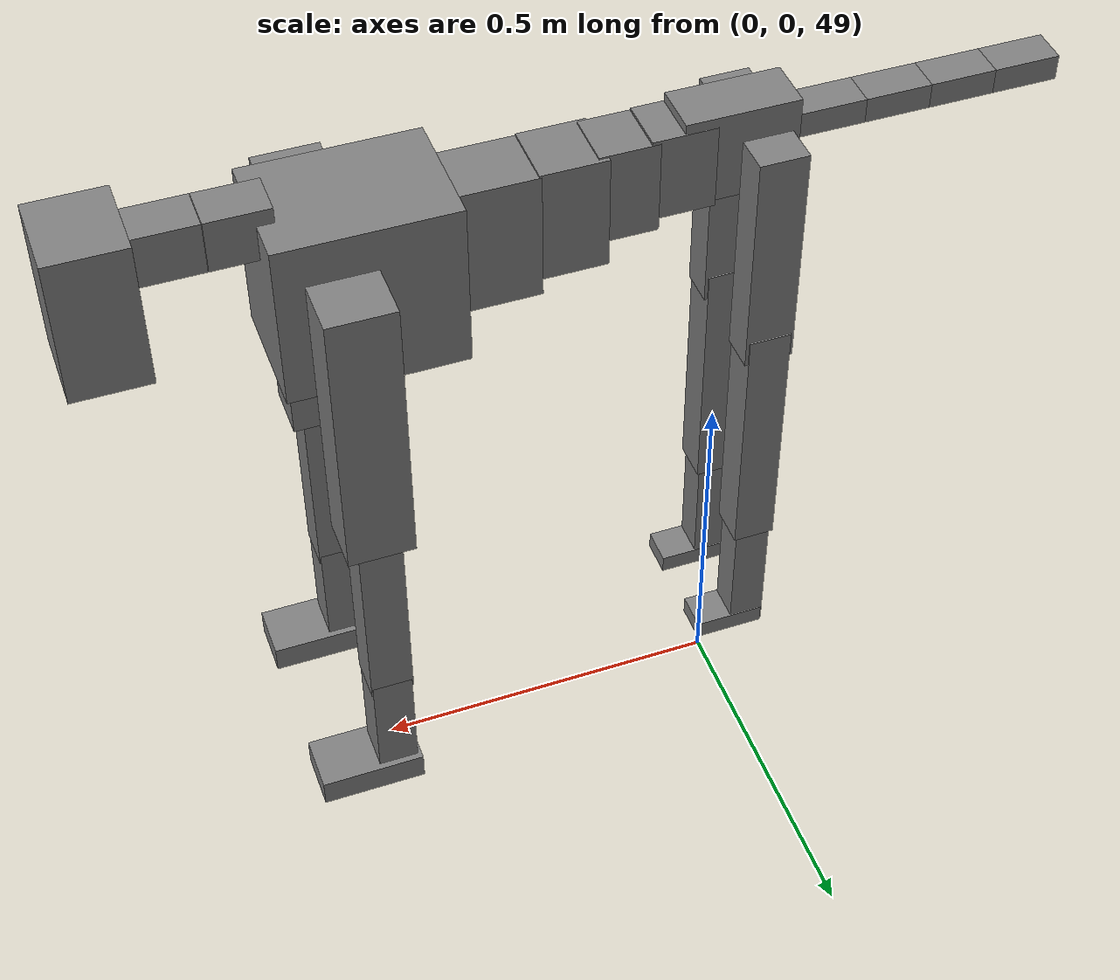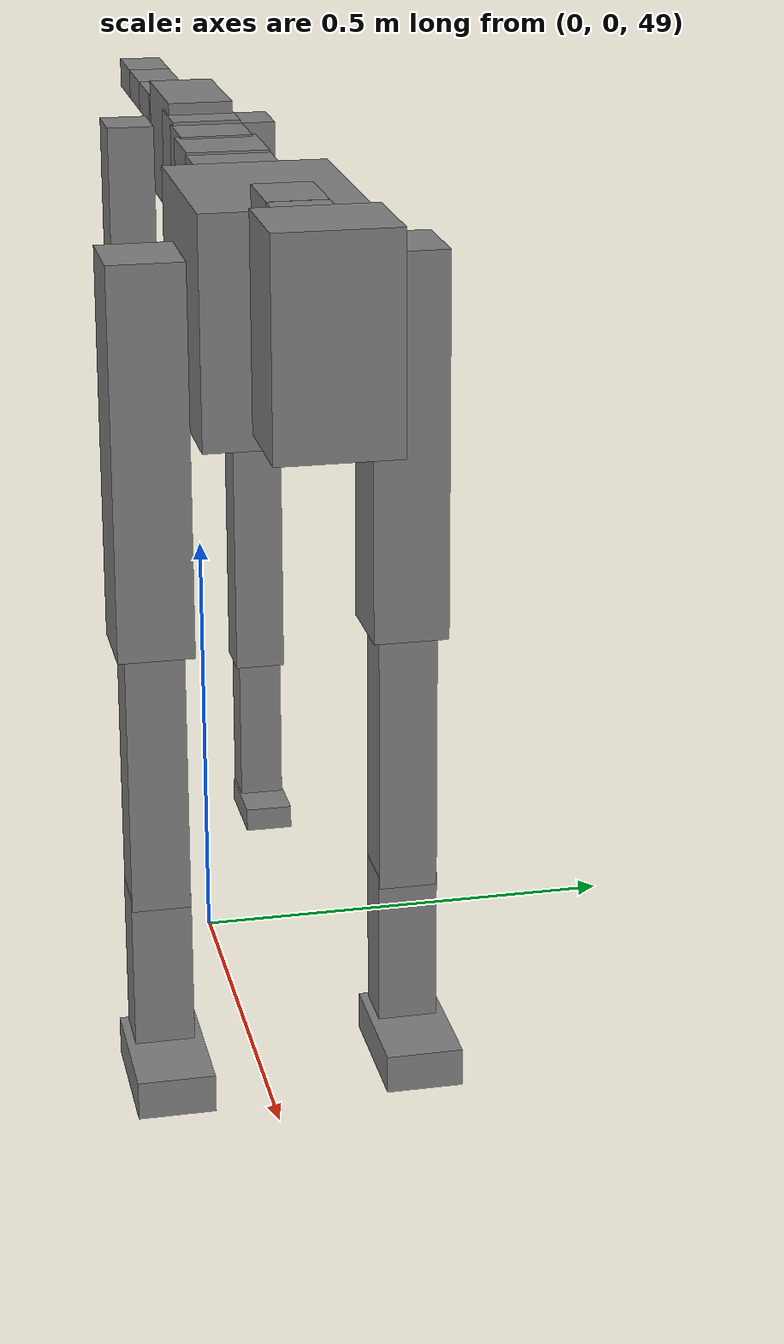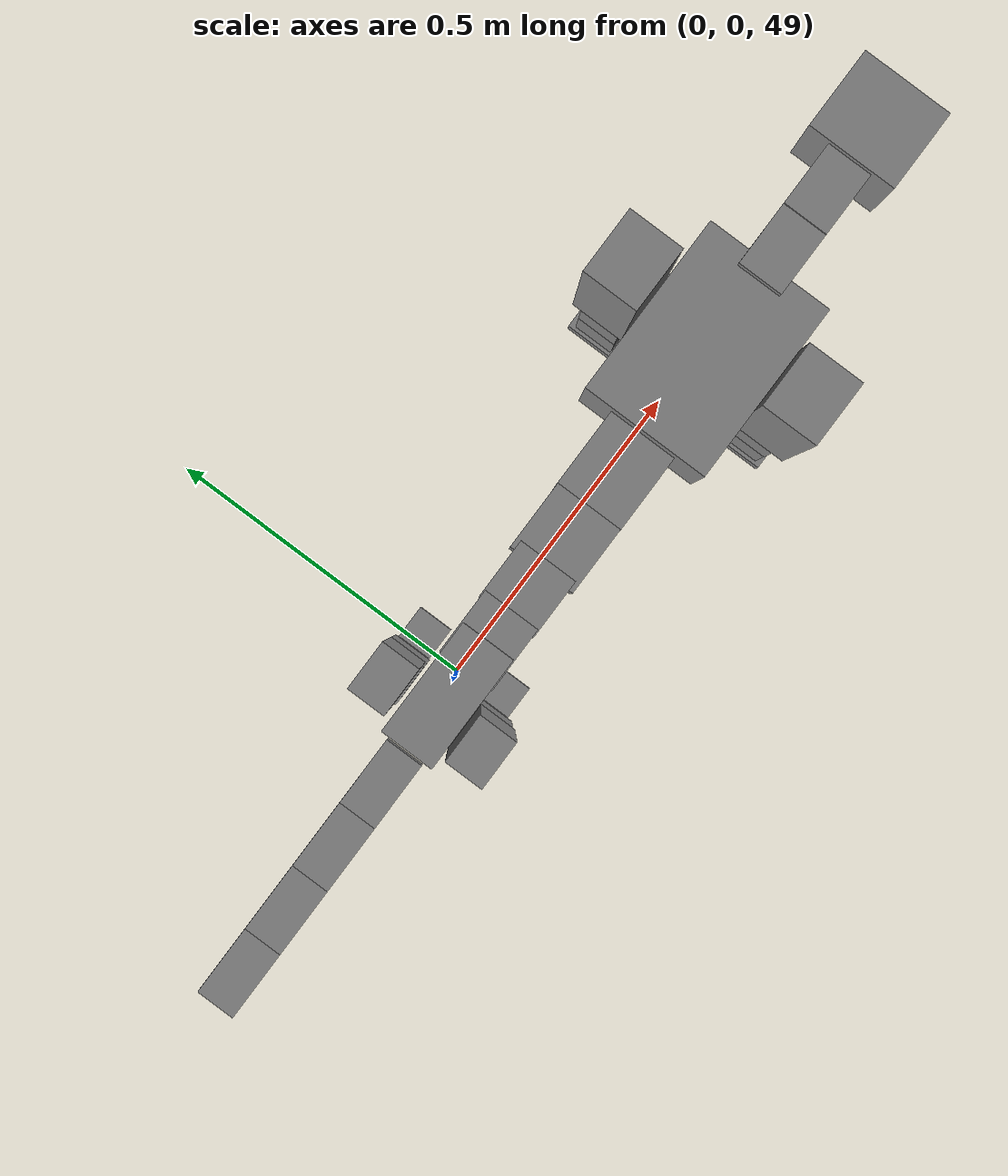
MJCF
<mujoco model="dog">

    <default>
        <joint armature="0.02" stiffness="1" damping="0.2" limited="true"/>
        <geom condim="3" friction="1 0.05 0.05" margin="0.01"/>
        <motor ctrllimited="true" ctrlrange="-1.0 1.0" forcelimited="true" gear="50"/>
    </default>

    <compiler inertiafromgeom="true" angle="radian"/>

    <option timestep="0.016" iterations="50" tolerance="1e-10" solver="Newton" jacobian="dense" cone="pyramidal"/>

    <size nconmax="20000" njmax="60000" nstack="5000000"/>
    <visual>
        <map force="0.1" zfar="30"/>
        <rgba haze="0.15 0.25 0.35 1"/>
        <quality shadowsize="2048"/>
        <global offwidth="800" offheight="800"/>
    </visual>

    <asset>
        <texture type="skybox" builtin="gradient" rgb1="0.3 0.5 0.7" rgb2="0 0 0" width="512" height="512"/>
        <texture name="texplane" type="2d" builtin="checker" rgb1=".2 .3 .4" rgb2=".1 0.15 0.2" width="512" height="512"
                 mark="cross" markrgb=".8 .8 .8"/>
        <texture name="texgeom" type="cube" builtin="flat" mark="cross" width="127" height="1278" rgb1="0.8 0.6 0.4"
                 rgb2="0.8 0.6 0.4" markrgb="1 1 1" random="0.01"/>

        <material name="matplane" reflectance="0.3" texture="texplane" texrepeat="1 1" texuniform="true"/>
        <material name="matgeom" texture="texgeom" texuniform="true" rgba="0.8 0.6 .4 1"/>
    </asset>

    <worldbody>
        <geom name="floor" pos="0 0 0" size="0 0 .25" type="plane" material="matplane" condim="3"/>

        <light directional="false" diffuse=".2 .2 .2" specular="0 0 0" pos="0 0 5" dir="0 0 -1" castshadow="false"/>
        <light mode="targetbodycom" target="torso" directional="false" diffuse=".8 .8 .8" specular="0.3 0.3 0.3"
               pos="0 0 4.0" dir="0 0 -1"/>

        <body name="root" pos="0 0 50">
            <freejoint name="root_1"/>
            <geom type="box" pos="0 0 -0.02" size="0.0774  0.0358  0.063" density="2030"/>

            <body name="spine1" pos="0.054 0 0">
                <joint name="spine1_y" axis="0 1 0" range="0 0.7" limited="true"/>
                <geom type="box" pos="0.02375 0 -0.03" size="0.04375  0.0375  0.05985" density="2030"/>

                <body name="spine2" pos="0.0612 0 0">
                    <joint name="spine2_y" axis="0 1 0" range="-0.15 0.15" limited="true"/>
                    <geom type="box" pos="0.03555  0  -0.04" size="0.04055  0.039  0.06615" density="2030"/>

                    <body name="spine3" pos="0.0730 0 0">
                        <joint name="spine3_y" axis="0 1 0" range="-0.15 0.15" limited="true"/>
                        <geom type="box" pos="0.03555  0  -0.057" size="0.04555  0.0445  0.081" density="2030"/>

                        <body name="spine4" pos="0.0780 0 0">
                            <joint name="spine4_y" axis="0 1 0" range="-0.15 0.15" limited="true"/>
                            <geom type="box" pos="0.05265  0  -0.07" size="0.05265  0.045  0.09135" density="2030"/>

                            <body name="torso" pos="0.1082 0 0">
                                <joint name="torso_y" axis="0 1 0" range="-0.15 0.15" limited="true"/>
                                <geom type="box" pos="0.11925  0  -0.085" size="0.11925  0.085  0.11745"
                                      density="2030"/>

                                <body name="neck1" pos="0.2160  0   0.0180">
                                    <joint name="neck1_y" axis="0 1 0" range="-1.2  -1" limited="true"/>
                                    <geom type="box" pos="0.0423  0  0" size="0.0423  0.03  0.036" density="2325"/>

                                    <body name="neck2" pos="0.0853  0  0">
                                        <joint name="neck2_y" axis="0 1 0" range="0.1  0" limited="true"/>
                                        <geom type="box" pos="0.0423  0  0" size="0.0423  0.03  0.036" density="2325"/>

                                        <body name="head" pos="0.0853  0  0">
                                            <joint name="head_y" axis="0 1 0" range="-0.3  -0.2" limited="true"/>
                                            <geom type="box" pos="0.0531  0  -0.055" size="0.0531  0.06  0.1044"
                                                  density="4030"/>

                                        </body>
                                    </body>
                                </body>

                                <body name="front_shoulder" pos="0.156  0   -0.0480">
                                    <joint name="front_shoulder_y" axis="0 1 0" range="-1 1.5" limited="true"/>
                                    <geom type="box" pos="0 0.13 -0.1754" size="0.0456  0.0390  0.2021" density="1158"/>
                                    <geom type="box" pos="0 -0.13 -0.1754" size="0.0456  0.0390  0.2021"
                                          density="1158"/>

                                    <body name="front_elbow" pos="0  0  -0.3508">
                                        <joint name="front_elbow_y" axis="0 1 0" range="-2 0" limited="true"/>
                                        <geom type="box" pos="0 0.13 -0.1531" size="0.0298  0.0305  0.1531"
                                              density="1081"/>
                                        <geom type="box" pos="0 -0.13 -0.1531" size="0.0298  0.0305  0.1531"
                                              density="1081"/>

                                        <body name="front_wrist" pos="0  0  -0.3062">
                                            <joint name="front_wrist_y" axis="0 1 0" range="-0.2 0" limited="true"/>
                                            <geom type="box" pos="0 0.13 -0.0837" size="0.0280  0.0311  0.0968"
                                                  density="1664"/>
                                            <geom type="box" pos="0 -0.13 -0.0837" size="0.0280  0.0311  0.0968"
                                                  density="1664"/>

                                            <body name="front_finger_end" pos="0  0  -0.1674">
                                                <joint name="front_finger_y" axis="0 1 0" range="-0.4 1"
                                                       limited="true"/>
                                                <geom type="box" pos="0.0400  0.13  -0.0052"
                                                      size="0.0733  0.0400  0.0202" density="1515"/>
                                                <geom type="box" pos="0.0400  -0.13  -0.0052"
                                                      size="0.0733  0.0400  0.0202" density="1515"/>

                                            </body>

                                        </body>
                                    </body>
                                </body>

                            </body>
                        </body>
                    </body>
                </body>
            </body>

            <body name="back_hip" pos="-0.03 0 -0.018">
                <joint name="back_hip_y" axis="0 1 0" range="-1.5 0.3" limited="true"/>
                <geom type="box" pos="0 0.07 -0.1414" size="0.0338  0.0265  0.1642" density="1154"/>
                <geom type="box" pos="0 -0.07 -0.1414" size="0.0338  0.0265  0.1642" density="1154"/>

                <body name="back_knee" pos="0  0  -0.2827">
                    <joint name="back_knee_y" axis="0 1 0" range="0 2.8" limited="true"/>
                    <geom type="box" pos="0 0.07 -0.1732" size="0.0293  0.0289  0.1887" density="1227"/>
                    <geom type="box" pos="0 -0.07 -0.1732" size="0.0293  0.0289  0.1887" density="1227"/>

                    <body name="back_ankle" pos="0  0  -0.3464">
                        <joint name="back_ankle_y" axis="0 1 0" range="-2.2 0" limited="true"/>
                        <geom type="box" pos="0 0.07 -0.0992" size="0.0251  0.0251  0.1104" density="1284"/>
                        <geom type="box" pos="0 -0.07 -0.0992" size="0.0251  0.0251  0.1104" density="1284"/>

                        <body name="back_toe_end" pos="0  0  -0.1983">
                            <joint name="back_toe_y" axis="0 1 0" range="-0.4 1" limited="true"/>
                            <geom type="box" pos="0.0271  0.07  0.0015" size="0.0497  0.0271  0.0135" density="1515"/>
                            <geom type="box" pos="0.0271  -0.07  0.0015" size="0.0497  0.0271  0.0135" density="1515"/>

                        </body>
                    </body>
                </body>
            </body>

            <body name="tail1" pos="-0.074 0 -0.006">
                <joint name="tail1_y" axis="0 1 0" range="-0.2 0.2" limited="true"/>
                <geom type="box" pos="-0.0536  0  0" size="0.045  0.025  0.0175" density="1587"/>

                <body name="tail2" pos="-0.09 0 0">
                    <joint name="tail2_y" axis="0 1 0" range="-0.2 0.2" limited="true"/>
                    <geom type="box" pos="-0.0536  0  0" size="0.045  0.025  0.0175" density="1587"/>

                    <body name="tail3" pos="-0.09 0 0">
                        <joint name="tail3_y" axis="0 1 0" range="-0.2 0.2" limited="true"/>
                        <geom type="box" pos="-0.0536  0  0" size="0.045  0.025  0.0175" density="1587"/>

                        <body name="tail4" pos="-0.09 0 0">
                            <joint name="tail4_y" axis="0 1 0" range="-0.2 0.2" limited="true"/>
                            <geom type="box" pos="-0.0536  0  0" size="0.045  0.025  0.0175" density="1587"/>

                        </body>
                    </body>
                </body>
            </body>
        </body>
    </worldbody>

    <actuator>
        <motor joint="spine1_y" forcerange="-150 150     "/>
        <motor joint="spine2_y" forcerange="-150 150     "/>
        <motor joint="spine3_y" forcerange="-150 150     "/>
        <motor joint="spine4_y" forcerange="-150 150     "/>
        <motor joint="torso_y" forcerange="-150 150     "/>
        <motor joint="neck1_y" forcerange="-100 100       "/>
        <motor joint="neck2_y" forcerange="-100 100       "/>
        <motor joint="head_y" forcerange="-150 150       "/>
        <motor joint="front_shoulder_y" forcerange="-163.45 196.53"/>
        <motor joint="front_elbow_y" forcerange="-184.62 137.26"/>
        <motor joint="front_wrist_y" forcerange="-137.87 111.22"/>
        <motor joint="front_finger_y" forcerange="-80.44 92.83"/>
        <motor joint="back_hip_y" forcerange="-207.93 345.87"/>
        <motor joint="back_knee_y" forcerange="-264.60 355.89"/>
        <motor joint="back_angle_y" forcerange="-111.30 190.02"/>
        <motor joint="back_toe_y" forcerange="-59.41 77.37"/>
        <motor joint="tail1_y" forcerange="-50 50     "/>
        <motor joint="tail2_y" forcerange="-50 50     "/>
        <motor joint="tail3_y" forcerange="-50 50     "/>
        <motor joint="tail4_y" forcerange="-50 50     "/>
    </actuator>
</mujoco>
